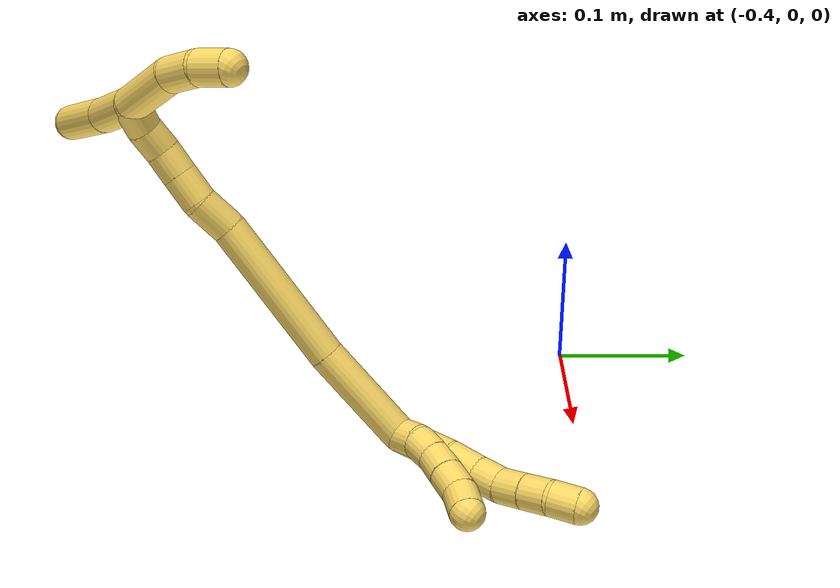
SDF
<sdf version="1.7">
 <world name="default">
  <model name="5">
   <static>0</static>
   <link name="5">
    <collision name="collision-cylinder-e_1_2_8">
     <pose>-0.000195 -0.00746 -0.021471 2.80718 -0.008571 -0.050768</pose>
     <geometry><cylinder><radius>0.0125</radius><length>0.045462</length></cylinder></geometry>
     <surface>
      <friction><ode><mu>1.16</mu><mu2>1.16</mu2><slip1>0</slip1><slip2>0</slip2></ode></friction>
      <contact><ode><kp>1e+06</kp><kd>1</kd><max_vel>0</max_vel><min_depth>0.001</min_depth></ode></contact>
     </surface>
    </collision>
    <visual name="visual-cylinder-e_1_2_8">
     <pose>-0.000195 -0.00746 -0.021471 2.80718 -0.008571 -0.050768</pose>
     <geometry><cylinder><radius>0.0125</radius><length>0.045462</length></cylinder></geometry>
     <material><ambient>1 0.858824 0.4 1</ambient></material>
    </visual>
    <collision name="collision-cylinder-e_2_8_9">
     <pose>-0.000342 -0.017034 -0.05482 2.96553 0.003911 0.044304</pose>
     <geometry><cylinder><radius>0.0125</radius><length>0.02413</length></cylinder></geometry>
     <surface>
      <friction><ode><mu>1.16</mu><mu2>1.16</mu2><slip1>0</slip1><slip2>0</slip2></ode></friction>
      <contact><ode><kp>1e+06</kp><kd>1</kd><max_vel>0</max_vel><min_depth>0.001</min_depth></ode></contact>
     </surface>
    </collision>
    <visual name="visual-cylinder-e_2_8_9">
     <pose>-0.000342 -0.017034 -0.05482 2.96553 0.003911 0.044304</pose>
     <geometry><cylinder><radius>0.0125</radius><length>0.02413</length></cylinder></geometry>
     <material><ambient>1 0.858824 0.4 1</ambient></material>
    </visual>
    <collision name="collision-cylinder-e_3_9_10">
     <pose>-0.000886 -0.022522 -0.076281 2.80299 -0.058087 -0.336693</pose>
     <geometry><cylinder><radius>0.0125</radius><length>0.020352</length></cylinder></geometry>
     <surface>
      <friction><ode><mu>1.16</mu><mu2>1.16</mu2><slip1>0</slip1><slip2>0</slip2></ode></friction>
      <contact><ode><kp>1e+06</kp><kd>1</kd><max_vel>0</max_vel><min_depth>0.001</min_depth></ode></contact>
     </surface>
    </collision>
    <visual name="visual-cylinder-e_3_9_10">
     <pose>-0.000886 -0.022522 -0.076281 2.80299 -0.058087 -0.336693</pose>
     <geometry><cylinder><radius>0.0125</radius><length>0.020352</length></cylinder></geometry>
     <material><ambient>1 0.858824 0.4 1</ambient></material>
    </visual>
    <collision name="collision-cylinder-e_4_10_11">
     <pose>-0.000873 -0.030757 -0.094612 2.63451 0.060216 0.231422</pose>
     <geometry><cylinder><radius>0.0125</radius><length>0.020053</length></cylinder></geometry>
     <surface>
      <friction><ode><mu>1.16</mu><mu2>1.16</mu2><slip1>0</slip1><slip2>0</slip2></ode></friction>
      <contact><ode><kp>1e+06</kp><kd>1</kd><max_vel>0</max_vel><min_depth>0.001</min_depth></ode></contact>
     </surface>
    </collision>
    <visual name="visual-cylinder-e_4_10_11">
     <pose>-0.000873 -0.030757 -0.094612 2.63451 0.060216 0.231422</pose>
     <geometry><cylinder><radius>0.0125</radius><length>0.020053</length></cylinder></geometry>
     <material><ambient>1 0.858824 0.4 1</ambient></material>
    </visual>
    <collision name="collision-cylinder-e_5_11_12">
     <pose>0.000708 -0.040206 -0.112193 2.66237 0.097965 0.396057</pose>
     <geometry><cylinder><radius>0.0125</radius><length>0.020003</length></cylinder></geometry>
     <surface>
      <friction><ode><mu>1.16</mu><mu2>1.16</mu2><slip1>0</slip1><slip2>0</slip2></ode></friction>
      <contact><ode><kp>1e+06</kp><kd>1</kd><max_vel>0</max_vel><min_depth>0.001</min_depth></ode></contact>
     </surface>
    </collision>
    <visual name="visual-cylinder-e_5_11_12">
     <pose>0.000708 -0.040206 -0.112193 2.66237 0.097965 0.396057</pose>
     <geometry><cylinder><radius>0.0125</radius><length>0.020003</length></cylinder></geometry>
     <material><ambient>1 0.858824 0.4 1</ambient></material>
    </visual>
    <collision name="collision-cylinder-e_6_12_6">
     <pose>0.003896 -0.047208 -0.130475 2.89171 0.222753 1.45504</pose>
     <geometry><cylinder><radius>0.0125</radius><length>0.02</length></cylinder></geometry>
     <surface>
      <friction><ode><mu>1.16</mu><mu2>1.16</mu2><slip1>0</slip1><slip2>0</slip2></ode></friction>
      <contact><ode><kp>1e+06</kp><kd>1</kd><max_vel>0</max_vel><min_depth>0.001</min_depth></ode></contact>
     </surface>
    </collision>
    <visual name="visual-cylinder-e_6_12_6">
     <pose>0.003896 -0.047208 -0.130475 2.89171 0.222753 1.45504</pose>
     <geometry><cylinder><radius>0.0125</radius><length>0.02</length></cylinder></geometry>
     <material><ambient>1 0.858824 0.4 1</ambient></material>
    </visual>
    <collision name="collision-cylinder-e_1_2_13">
     <pose>-0.000884 -0.005065 -0.008577 2.60819 -0.088558 -0.321548</pose>
     <geometry><cylinder><radius>0.0125</radius><length>0.02</length></cylinder></geometry>
     <surface>
      <friction><ode><mu>1.16</mu><mu2>1.16</mu2><slip1>0</slip1><slip2>0</slip2></ode></friction>
      <contact><ode><kp>1e+06</kp><kd>1</kd><max_vel>0</max_vel><min_depth>0.001</min_depth></ode></contact>
     </surface>
    </collision>
    <visual name="visual-cylinder-e_1_2_13">
     <pose>-0.000884 -0.005065 -0.008577 2.60819 -0.088558 -0.321548</pose>
     <geometry><cylinder><radius>0.0125</radius><length>0.02</length></cylinder></geometry>
     <material><ambient>1 0.858824 0.4 1</ambient></material>
    </visual>
    <collision name="collision-cylinder-e_2_13_14">
     <pose>-0.0048 -0.013323 -0.026133 2.79988 -0.307977 -1.4652</pose>
     <geometry><cylinder><radius>0.0125</radius><length>0.02</length></cylinder></geometry>
     <surface>
      <friction><ode><mu>1.16</mu><mu2>1.16</mu2><slip1>0</slip1><slip2>0</slip2></ode></friction>
      <contact><ode><kp>1e+06</kp><kd>1</kd><max_vel>0</max_vel><min_depth>0.001</min_depth></ode></contact>
     </surface>
    </collision>
    <visual name="visual-cylinder-e_2_13_14">
     <pose>-0.0048 -0.013323 -0.026133 2.79988 -0.307977 -1.4652</pose>
     <geometry><cylinder><radius>0.0125</radius><length>0.02</length></cylinder></geometry>
     <material><ambient>1 0.858824 0.4 1</ambient></material>
    </visual>
    <collision name="collision-cylinder-e_3_14_15">
     <pose>-0.012517 -0.01968 -0.04336 2.77529 -0.487609 -1.8615</pose>
     <geometry><cylinder><radius>0.0125</radius><length>0.02</length></cylinder></geometry>
     <surface>
      <friction><ode><mu>1.16</mu><mu2>1.16</mu2><slip1>0</slip1><slip2>0</slip2></ode></friction>
      <contact><ode><kp>1e+06</kp><kd>1</kd><max_vel>0</max_vel><min_depth>0.001</min_depth></ode></contact>
     </surface>
    </collision>
    <visual name="visual-cylinder-e_3_14_15">
     <pose>-0.012517 -0.01968 -0.04336 2.77529 -0.487609 -1.8615</pose>
     <geometry><cylinder><radius>0.0125</radius><length>0.02</length></cylinder></geometry>
     <material><ambient>1 0.858824 0.4 1</ambient></material>
    </visual>
    <collision name="collision-cylinder-e_4_15_16">
     <pose>-0.021689 -0.025628 -0.0601 2.82483 -0.465366 -1.95549</pose>
     <geometry><cylinder><radius>0.0125</radius><length>0.02</length></cylinder></geometry>
     <surface>
      <friction><ode><mu>1.16</mu><mu2>1.16</mu2><slip1>0</slip1><slip2>0</slip2></ode></friction>
      <contact><ode><kp>1e+06</kp><kd>1</kd><max_vel>0</max_vel><min_depth>0.001</min_depth></ode></contact>
     </surface>
    </collision>
    <visual name="visual-cylinder-e_4_15_16">
     <pose>-0.021689 -0.025628 -0.0601 2.82483 -0.465366 -1.95549</pose>
     <geometry><cylinder><radius>0.0125</radius><length>0.02</length></cylinder></geometry>
     <material><ambient>1 0.858824 0.4 1</ambient></material>
    </visual>
    <collision name="collision-cylinder-e_5_16_5">
     <pose>-0.03246 -0.03167 -0.075656 2.70939 -0.679448 -2.02994</pose>
     <geometry><cylinder><radius>0.0125</radius><length>0.02</length></cylinder></geometry>
     <surface>
      <friction><ode><mu>1.16</mu><mu2>1.16</mu2><slip1>0</slip1><slip2>0</slip2></ode></friction>
      <contact><ode><kp>1e+06</kp><kd>1</kd><max_vel>0</max_vel><min_depth>0.001</min_depth></ode></contact>
     </surface>
    </collision>
    <visual name="visual-cylinder-e_5_16_5">
     <pose>-0.03246 -0.03167 -0.075656 2.70939 -0.679448 -2.02994</pose>
     <geometry><cylinder><radius>0.0125</radius><length>0.02</length></cylinder></geometry>
     <material><ambient>1 0.858824 0.4 1</ambient></material>
    </visual>
    <collision name="collision-cylinder-e_1_2_17">
     <pose>-0.001308 -0.018365 0.034031 0.494863 -0.033812 -0.008542</pose>
     <geometry><cylinder><radius>0.0125</radius><length>0.077384</length></cylinder></geometry>
     <surface>
      <friction><ode><mu>1.16</mu><mu2>1.16</mu2><slip1>0</slip1><slip2>0</slip2></ode></friction>
      <contact><ode><kp>1e+06</kp><kd>1</kd><max_vel>0</max_vel><min_depth>0.001</min_depth></ode></contact>
     </surface>
    </collision>
    <visual name="visual-cylinder-e_1_2_17">
     <pose>-0.001308 -0.018365 0.034031 0.494863 -0.033812 -0.008542</pose>
     <geometry><cylinder><radius>0.0125</radius><length>0.077384</length></cylinder></geometry>
     <material><ambient>1 0.858824 0.4 1</ambient></material>
    </visual>
    <collision name="collision-cylinder-e_2_17_18">
     <pose>-0.001439 -0.066958 0.115176 0.570451 0.021029 0.006166</pose>
     <geometry><cylinder><radius>0.0125</radius><length>0.111981</length></cylinder></geometry>
     <surface>
      <friction><ode><mu>1.16</mu><mu2>1.16</mu2><slip1>0</slip1><slip2>0</slip2></ode></friction>
      <contact><ode><kp>1e+06</kp><kd>1</kd><max_vel>0</max_vel><min_depth>0.001</min_depth></ode></contact>
     </surface>
    </collision>
    <visual name="visual-cylinder-e_2_17_18">
     <pose>-0.001439 -0.066958 0.115176 0.570451 0.021029 0.006166</pose>
     <geometry><cylinder><radius>0.0125</radius><length>0.111981</length></cylinder></geometry>
     <material><ambient>1 0.858824 0.4 1</ambient></material>
    </visual>
    <collision name="collision-cylinder-e_3_18_19">
     <pose>-0.003089 -0.104797 0.173426 0.599511 -0.206645 -0.064074</pose>
     <geometry><cylinder><radius>0.0125</radius><length>0.027561</length></cylinder></geometry>
     <surface>
      <friction><ode><mu>1.16</mu><mu2>1.16</mu2><slip1>0</slip1><slip2>0</slip2></ode></friction>
      <contact><ode><kp>1e+06</kp><kd>1</kd><max_vel>0</max_vel><min_depth>0.001</min_depth></ode></contact>
     </surface>
    </collision>
    <visual name="visual-cylinder-e_3_18_19">
     <pose>-0.003089 -0.104797 0.173426 0.599511 -0.206645 -0.064074</pose>
     <geometry><cylinder><radius>0.0125</radius><length>0.027561</length></cylinder></geometry>
     <material><ambient>1 0.858824 0.4 1</ambient></material>
    </visual>
    <collision name="collision-cylinder-e_4_19_20">
     <pose>-0.005431 -0.118728 0.194125 0.584 0.042286 0.012712</pose>
     <geometry><cylinder><radius>0.0125</radius><length>0.022947</length></cylinder></geometry>
     <surface>
      <friction><ode><mu>1.16</mu><mu2>1.16</mu2><slip1>0</slip1><slip2>0</slip2></ode></friction>
      <contact><ode><kp>1e+06</kp><kd>1</kd><max_vel>0</max_vel><min_depth>0.001</min_depth></ode></contact>
     </surface>
    </collision>
    <visual name="visual-cylinder-e_4_19_20">
     <pose>-0.005431 -0.118728 0.194125 0.584 0.042286 0.012712</pose>
     <geometry><cylinder><radius>0.0125</radius><length>0.022947</length></cylinder></geometry>
     <material><ambient>1 0.858824 0.4 1</ambient></material>
    </visual>
    <collision name="collision-cylinder-e_5_20_21">
     <pose>-0.004631 -0.130964 0.211746 0.633236 0.03149 0.010318</pose>
     <geometry><cylinder><radius>0.0125</radius><length>0.020002</length></cylinder></geometry>
     <surface>
      <friction><ode><mu>1.16</mu><mu2>1.16</mu2><slip1>0</slip1><slip2>0</slip2></ode></friction>
      <contact><ode><kp>1e+06</kp><kd>1</kd><max_vel>0</max_vel><min_depth>0.001</min_depth></ode></contact>
     </surface>
    </collision>
    <visual name="visual-cylinder-e_5_20_21">
     <pose>-0.004631 -0.130964 0.211746 0.633236 0.03149 0.010318</pose>
     <geometry><cylinder><radius>0.0125</radius><length>0.020002</length></cylinder></geometry>
     <material><ambient>1 0.858824 0.4 1</ambient></material>
    </visual>
    <collision name="collision-cylinder-e_6_21_22">
     <pose>-0.005702 -0.143945 0.22679 0.791138 -0.138517 -0.057918</pose>
     <geometry><cylinder><radius>0.0125</radius><length>0.020066</length></cylinder></geometry>
     <surface>
      <friction><ode><mu>1.16</mu><mu2>1.16</mu2><slip1>0</slip1><slip2>0</slip2></ode></friction>
      <contact><ode><kp>1e+06</kp><kd>1</kd><max_vel>0</max_vel><min_depth>0.001</min_depth></ode></contact>
     </surface>
    </collision>
    <visual name="visual-cylinder-e_6_21_22">
     <pose>-0.005702 -0.143945 0.22679 0.791138 -0.138517 -0.057918</pose>
     <geometry><cylinder><radius>0.0125</radius><length>0.020066</length></cylinder></geometry>
     <material><ambient>1 0.858824 0.4 1</ambient></material>
    </visual>
    <collision name="collision-cylinder-e_7_22_1">
     <pose>-0.008196 -0.159847 0.238391 1.08944 -0.110801 -0.067174</pose>
     <geometry><cylinder><radius>0.0125</radius><length>0.020059</length></cylinder></geometry>
     <surface>
      <friction><ode><mu>1.16</mu><mu2>1.16</mu2><slip1>0</slip1><slip2>0</slip2></ode></friction>
      <contact><ode><kp>1e+06</kp><kd>1</kd><max_vel>0</max_vel><min_depth>0.001</min_depth></ode></contact>
     </surface>
    </collision>
    <visual name="visual-cylinder-e_7_22_1">
     <pose>-0.008196 -0.159847 0.238391 1.08944 -0.110801 -0.067174</pose>
     <geometry><cylinder><radius>0.0125</radius><length>0.020059</length></cylinder></geometry>
     <material><ambient>1 0.858824 0.4 1</ambient></material>
    </visual>
    <collision name="collision-cylinder-e_1_1_23">
     <pose>-0.007943 -0.15279 0.257801 -0.82113 0.06266 -0.027283</pose>
     <geometry><cylinder><radius>0.0125</radius><length>0.043512</length></cylinder></geometry>
     <surface>
      <friction><ode><mu>1.16</mu><mu2>1.16</mu2><slip1>0</slip1><slip2>0</slip2></ode></friction>
      <contact><ode><kp>1e+06</kp><kd>1</kd><max_vel>0</max_vel><min_depth>0.001</min_depth></ode></contact>
     </surface>
    </collision>
    <visual name="visual-cylinder-e_1_1_23">
     <pose>-0.007943 -0.15279 0.257801 -0.82113 0.06266 -0.027283</pose>
     <geometry><cylinder><radius>0.0125</radius><length>0.043512</length></cylinder></geometry>
     <material><ambient>1 0.858824 0.4 1</ambient></material>
    </visual>
    <collision name="collision-cylinder-e_2_23_4">
     <pose>-0.004284 -0.117489 0.292986 -0.760774 0.081406 -0.032566</pose>
     <geometry><cylinder><radius>0.0125</radius><length>0.056488</length></cylinder></geometry>
     <surface>
      <friction><ode><mu>1.16</mu><mu2>1.16</mu2><slip1>0</slip1><slip2>0</slip2></ode></friction>
      <contact><ode><kp>1e+06</kp><kd>1</kd><max_vel>0</max_vel><min_depth>0.001</min_depth></ode></contact>
     </surface>
    </collision>
    <visual name="visual-cylinder-e_2_23_4">
     <pose>-0.004284 -0.117489 0.292986 -0.760774 0.081406 -0.032566</pose>
     <geometry><cylinder><radius>0.0125</radius><length>0.056488</length></cylinder></geometry>
     <material><ambient>1 0.858824 0.4 1</ambient></material>
    </visual>
    <collision name="collision-cylinder-e_1_1_24">
     <pose>-0.004197 -0.187878 0.229067 2.19887 0.212099 0.411788</pose>
     <geometry><cylinder><radius>0.0125</radius><length>0.048532</length></cylinder></geometry>
     <surface>
      <friction><ode><mu>1.16</mu><mu2>1.16</mu2><slip1>0</slip1><slip2>0</slip2></ode></friction>
      <contact><ode><kp>1e+06</kp><kd>1</kd><max_vel>0</max_vel><min_depth>0.001</min_depth></ode></contact>
     </surface>
    </collision>
    <visual name="visual-cylinder-e_1_1_24">
     <pose>-0.004197 -0.187878 0.229067 2.19887 0.212099 0.411788</pose>
     <geometry><cylinder><radius>0.0125</radius><length>0.048532</length></cylinder></geometry>
     <material><ambient>1 0.858824 0.4 1</ambient></material>
    </visual>
    <collision name="collision-cylinder-e_2_24_25">
     <pose>0.003159 -0.215445 0.204706 2.4648 0.166593 0.465849</pose>
     <geometry><cylinder><radius>0.0125</radius><length>0.027112</length></cylinder></geometry>
     <surface>
      <friction><ode><mu>1.16</mu><mu2>1.16</mu2><slip1>0</slip1><slip2>0</slip2></ode></friction>
      <contact><ode><kp>1e+06</kp><kd>1</kd><max_vel>0</max_vel><min_depth>0.001</min_depth></ode></contact>
     </surface>
    </collision>
    <visual name="visual-cylinder-e_2_24_25">
     <pose>0.003159 -0.215445 0.204706 2.4648 0.166593 0.465849</pose>
     <geometry><cylinder><radius>0.0125</radius><length>0.027112</length></cylinder></geometry>
     <material><ambient>1 0.858824 0.4 1</ambient></material>
    </visual>
    <collision name="collision-cylinder-e_3_25_3">
     <pose>0.008337 -0.228758 0.183547 2.71039 0.242979 1.01714</pose>
     <geometry><cylinder><radius>0.0125</radius><length>0.024356</length></cylinder></geometry>
     <surface>
      <friction><ode><mu>1.16</mu><mu2>1.16</mu2><slip1>0</slip1><slip2>0</slip2></ode></friction>
      <contact><ode><kp>1e+06</kp><kd>1</kd><max_vel>0</max_vel><min_depth>0.001</min_depth></ode></contact>
     </surface>
    </collision>
    <visual name="visual-cylinder-e_3_25_3">
     <pose>0.008337 -0.228758 0.183547 2.71039 0.242979 1.01714</pose>
     <geometry><cylinder><radius>0.0125</radius><length>0.024356</length></cylinder></geometry>
     <material><ambient>1 0.858824 0.4 1</ambient></material>
    </visual>
    <collision name="collision-sphere-3">
     <pose>0.011267 -0.233699 0.172808 0 -0 0</pose>
     <geometry><sphere><radius>0.0125</radius></sphere></geometry>
     <surface>
      <friction><ode><mu>1.16</mu><mu2>1.16</mu2><slip1>0</slip1><slip2>0</slip2></ode></friction>
      <contact><ode><kp>1e+06</kp><kd>1</kd><max_vel>0</max_vel><min_depth>0.001</min_depth></ode></contact>
     </surface>
    </collision>
    <visual name="visual-sphere-3">
     <pose>0.011267 -0.233699 0.172808 0 -0 0</pose>
     <geometry><sphere><radius>0.0125</radius></sphere></geometry>
     <material><ambient>1 0.858824 0.4 1</ambient></material>
    </visual>
    <collision name="collision-sphere-25">
     <pose>0.005407 -0.223818 0.194285 0 -0 0</pose>
     <geometry><sphere><radius>0.0125</radius></sphere></geometry>
     <surface>
      <friction><ode><mu>1.16</mu><mu2>1.16</mu2><slip1>0</slip1><slip2>0</slip2></ode></friction>
      <contact><ode><kp>1e+06</kp><kd>1</kd><max_vel>0</max_vel><min_depth>0.001</min_depth></ode></contact>
     </surface>
    </collision>
    <visual name="visual-sphere-25">
     <pose>0.005407 -0.223818 0.194285 0 -0 0</pose>
     <geometry><sphere><radius>0.0125</radius></sphere></geometry>
     <material><ambient>1 0.858824 0.4 1</ambient></material>
    </visual>
    <collision name="collision-sphere-24">
     <pose>0.000912 -0.207073 0.215128 0 -0 0</pose>
     <geometry><sphere><radius>0.0125</radius></sphere></geometry>
     <surface>
      <friction><ode><mu>1.16</mu><mu2>1.16</mu2><slip1>0</slip1><slip2>0</slip2></ode></friction>
      <contact><ode><kp>1e+06</kp><kd>1</kd><max_vel>0</max_vel><min_depth>0.001</min_depth></ode></contact>
     </surface>
    </collision>
    <visual name="visual-sphere-24">
     <pose>0.000912 -0.207073 0.215128 0 -0 0</pose>
     <geometry><sphere><radius>0.0125</radius></sphere></geometry>
     <material><ambient>1 0.858824 0.4 1</ambient></material>
    </visual>
    <collision name="collision-sphere-4">
     <pose>-0.001987 -0.098079 0.313375 0 -0 0</pose>
     <geometry><sphere><radius>0.0125</radius></sphere></geometry>
     <surface>
      <friction><ode><mu>1.16</mu><mu2>1.16</mu2><slip1>0</slip1><slip2>0</slip2></ode></friction>
      <contact><ode><kp>1e+06</kp><kd>1</kd><max_vel>0</max_vel><min_depth>0.001</min_depth></ode></contact>
     </surface>
    </collision>
    <visual name="visual-sphere-4">
     <pose>-0.001987 -0.098079 0.313375 0 -0 0</pose>
     <geometry><sphere><radius>0.0125</radius></sphere></geometry>
     <material><ambient>1 0.858824 0.4 1</ambient></material>
    </visual>
    <collision name="collision-sphere-23">
     <pose>-0.00658 -0.136898 0.272596 0 -0 0</pose>
     <geometry><sphere><radius>0.0125</radius></sphere></geometry>
     <surface>
      <friction><ode><mu>1.16</mu><mu2>1.16</mu2><slip1>0</slip1><slip2>0</slip2></ode></friction>
      <contact><ode><kp>1e+06</kp><kd>1</kd><max_vel>0</max_vel><min_depth>0.001</min_depth></ode></contact>
     </surface>
    </collision>
    <visual name="visual-sphere-23">
     <pose>-0.00658 -0.136898 0.272596 0 -0 0</pose>
     <geometry><sphere><radius>0.0125</radius></sphere></geometry>
     <material><ambient>1 0.858824 0.4 1</ambient></material>
    </visual>
    <collision name="collision-sphere-1">
     <pose>-0.009305 -0.168683 0.243006 0 -0 0</pose>
     <geometry><sphere><radius>0.0125</radius></sphere></geometry>
     <surface>
      <friction><ode><mu>1.16</mu><mu2>1.16</mu2><slip1>0</slip1><slip2>0</slip2></ode></friction>
      <contact><ode><kp>1e+06</kp><kd>1</kd><max_vel>0</max_vel><min_depth>0.001</min_depth></ode></contact>
     </surface>
    </collision>
    <visual name="visual-sphere-1">
     <pose>-0.009305 -0.168683 0.243006 0 -0 0</pose>
     <geometry><sphere><radius>0.0125</radius></sphere></geometry>
     <material><ambient>1 0.858824 0.4 1</ambient></material>
    </visual>
    <collision name="collision-sphere-22">
     <pose>-0.007087 -0.151012 0.233776 0 -0 0</pose>
     <geometry><sphere><radius>0.0125</radius></sphere></geometry>
     <surface>
      <friction><ode><mu>1.16</mu><mu2>1.16</mu2><slip1>0</slip1><slip2>0</slip2></ode></friction>
      <contact><ode><kp>1e+06</kp><kd>1</kd><max_vel>0</max_vel><min_depth>0.001</min_depth></ode></contact>
     </surface>
    </collision>
    <visual name="visual-sphere-22">
     <pose>-0.007087 -0.151012 0.233776 0 -0 0</pose>
     <geometry><sphere><radius>0.0125</radius></sphere></geometry>
     <material><ambient>1 0.858824 0.4 1</ambient></material>
    </visual>
    <collision name="collision-sphere-21">
     <pose>-0.004316 -0.136879 0.219804 0 -0 0</pose>
     <geometry><sphere><radius>0.0125</radius></sphere></geometry>
     <surface>
      <friction><ode><mu>1.16</mu><mu2>1.16</mu2><slip1>0</slip1><slip2>0</slip2></ode></friction>
      <contact><ode><kp>1e+06</kp><kd>1</kd><max_vel>0</max_vel><min_depth>0.001</min_depth></ode></contact>
     </surface>
    </collision>
    <visual name="visual-sphere-21">
     <pose>-0.004316 -0.136879 0.219804 0 -0 0</pose>
     <geometry><sphere><radius>0.0125</radius></sphere></geometry>
     <material><ambient>1 0.858824 0.4 1</ambient></material>
    </visual>
    <collision name="collision-sphere-12">
     <pose>0.001686 -0.044796 -0.121025 0 -0 0</pose>
     <geometry><sphere><radius>0.0125</radius></sphere></geometry>
     <surface>
      <friction><ode><mu>1.16</mu><mu2>1.16</mu2><slip1>0</slip1><slip2>0</slip2></ode></friction>
      <contact><ode><kp>1e+06</kp><kd>1</kd><max_vel>0</max_vel><min_depth>0.001</min_depth></ode></contact>
     </surface>
    </collision>
    <visual name="visual-sphere-12">
     <pose>0.001686 -0.044796 -0.121025 0 -0 0</pose>
     <geometry><sphere><radius>0.0125</radius></sphere></geometry>
     <material><ambient>1 0.858824 0.4 1</ambient></material>
    </visual>
    <collision name="collision-sphere-11">
     <pose>-0.00027 -0.035617 -0.103361 0 -0 0</pose>
     <geometry><sphere><radius>0.0125</radius></sphere></geometry>
     <surface>
      <friction><ode><mu>1.16</mu><mu2>1.16</mu2><slip1>0</slip1><slip2>0</slip2></ode></friction>
      <contact><ode><kp>1e+06</kp><kd>1</kd><max_vel>0</max_vel><min_depth>0.001</min_depth></ode></contact>
     </surface>
    </collision>
    <visual name="visual-sphere-11">
     <pose>-0.00027 -0.035617 -0.103361 0 -0 0</pose>
     <geometry><sphere><radius>0.0125</radius></sphere></geometry>
     <material><ambient>1 0.858824 0.4 1</ambient></material>
    </visual>
    <collision name="collision-sphere-10">
     <pose>-0.001477 -0.025896 -0.085863 0 -0 0</pose>
     <geometry><sphere><radius>0.0125</radius></sphere></geometry>
     <surface>
      <friction><ode><mu>1.16</mu><mu2>1.16</mu2><slip1>0</slip1><slip2>0</slip2></ode></friction>
      <contact><ode><kp>1e+06</kp><kd>1</kd><max_vel>0</max_vel><min_depth>0.001</min_depth></ode></contact>
     </surface>
    </collision>
    <visual name="visual-sphere-10">
     <pose>-0.001477 -0.025896 -0.085863 0 -0 0</pose>
     <geometry><sphere><radius>0.0125</radius></sphere></geometry>
     <material><ambient>1 0.858824 0.4 1</ambient></material>
    </visual>
    <collision name="collision-sphere-9">
     <pose>-0.000295 -0.019147 -0.066699 0 -0 0</pose>
     <geometry><sphere><radius>0.0125</radius></sphere></geometry>
     <surface>
      <friction><ode><mu>1.16</mu><mu2>1.16</mu2><slip1>0</slip1><slip2>0</slip2></ode></friction>
      <contact><ode><kp>1e+06</kp><kd>1</kd><max_vel>0</max_vel><min_depth>0.001</min_depth></ode></contact>
     </surface>
    </collision>
    <visual name="visual-sphere-9">
     <pose>-0.000295 -0.019147 -0.066699 0 -0 0</pose>
     <geometry><sphere><radius>0.0125</radius></sphere></geometry>
     <material><ambient>1 0.858824 0.4 1</ambient></material>
    </visual>
    <collision name="collision-sphere-2">
     <geometry><sphere><radius>0.0125</radius></sphere></geometry>
     <surface>
      <friction><ode><mu>1.16</mu><mu2>1.16</mu2><slip1>0</slip1><slip2>0</slip2></ode></friction>
      <contact><ode><kp>1e+06</kp><kd>1</kd><max_vel>0</max_vel><min_depth>0.001</min_depth></ode></contact>
     </surface>
    </collision>
    <visual name="visual-sphere-2">
     <geometry><sphere><radius>0.0125</radius></sphere></geometry>
     <material><ambient>1 0.858824 0.4 1</ambient></material>
    </visual>
    <collision name="collision-sphere-19">
     <pose>-0.005916 -0.112408 0.184561 0 -0 0</pose>
     <geometry><sphere><radius>0.0125</radius></sphere></geometry>
     <surface>
      <friction><ode><mu>1.16</mu><mu2>1.16</mu2><slip1>0</slip1><slip2>0</slip2></ode></friction>
      <contact><ode><kp>1e+06</kp><kd>1</kd><max_vel>0</max_vel><min_depth>0.001</min_depth></ode></contact>
     </surface>
    </collision>
    <visual name="visual-sphere-19">
     <pose>-0.005916 -0.112408 0.184561 0 -0 0</pose>
     <geometry><sphere><radius>0.0125</radius></sphere></geometry>
     <material><ambient>1 0.858824 0.4 1</ambient></material>
    </visual>
    <collision name="collision-sphere-8">
     <pose>-0.00039 -0.014921 -0.042942 0 -0 0</pose>
     <geometry><sphere><radius>0.0125</radius></sphere></geometry>
     <surface>
      <friction><ode><mu>1.16</mu><mu2>1.16</mu2><slip1>0</slip1><slip2>0</slip2></ode></friction>
      <contact><ode><kp>1e+06</kp><kd>1</kd><max_vel>0</max_vel><min_depth>0.001</min_depth></ode></contact>
     </surface>
    </collision>
    <visual name="visual-sphere-8">
     <pose>-0.00039 -0.014921 -0.042942 0 -0 0</pose>
     <geometry><sphere><radius>0.0125</radius></sphere></geometry>
     <material><ambient>1 0.858824 0.4 1</ambient></material>
    </visual>
    <collision name="collision-sphere-6">
     <pose>0.006105 -0.049619 -0.139925 0 -0 0</pose>
     <geometry><sphere><radius>0.0125</radius></sphere></geometry>
     <surface>
      <friction><ode><mu>1.16</mu><mu2>1.16</mu2><slip1>0</slip1><slip2>0</slip2></ode></friction>
      <contact><ode><kp>1e+06</kp><kd>1</kd><max_vel>0</max_vel><min_depth>0.001</min_depth></ode></contact>
     </surface>
    </collision>
    <visual name="visual-sphere-6">
     <pose>0.006105 -0.049619 -0.139925 0 -0 0</pose>
     <geometry><sphere><radius>0.0125</radius></sphere></geometry>
     <material><ambient>1 0.858824 0.4 1</ambient></material>
    </visual>
    <collision name="collision-sphere-13">
     <pose>-0.001769 -0.01013 -0.017154 0 -0 0</pose>
     <geometry><sphere><radius>0.0125</radius></sphere></geometry>
     <surface>
      <friction><ode><mu>1.16</mu><mu2>1.16</mu2><slip1>0</slip1><slip2>0</slip2></ode></friction>
      <contact><ode><kp>1e+06</kp><kd>1</kd><max_vel>0</max_vel><min_depth>0.001</min_depth></ode></contact>
     </surface>
    </collision>
    <visual name="visual-sphere-13">
     <pose>-0.001769 -0.01013 -0.017154 0 -0 0</pose>
     <geometry><sphere><radius>0.0125</radius></sphere></geometry>
     <material><ambient>1 0.858824 0.4 1</ambient></material>
    </visual>
    <collision name="collision-sphere-14">
     <pose>-0.007831 -0.016516 -0.035111 0 -0 0</pose>
     <geometry><sphere><radius>0.0125</radius></sphere></geometry>
     <surface>
      <friction><ode><mu>1.16</mu><mu2>1.16</mu2><slip1>0</slip1><slip2>0</slip2></ode></friction>
      <contact><ode><kp>1e+06</kp><kd>1</kd><max_vel>0</max_vel><min_depth>0.001</min_depth></ode></contact>
     </surface>
    </collision>
    <visual name="visual-sphere-14">
     <pose>-0.007831 -0.016516 -0.035111 0 -0 0</pose>
     <geometry><sphere><radius>0.0125</radius></sphere></geometry>
     <material><ambient>1 0.858824 0.4 1</ambient></material>
    </visual>
    <collision name="collision-sphere-15">
     <pose>-0.017202 -0.022845 -0.051608 0 -0 0</pose>
     <geometry><sphere><radius>0.0125</radius></sphere></geometry>
     <surface>
      <friction><ode><mu>1.16</mu><mu2>1.16</mu2><slip1>0</slip1><slip2>0</slip2></ode></friction>
      <contact><ode><kp>1e+06</kp><kd>1</kd><max_vel>0</max_vel><min_depth>0.001</min_depth></ode></contact>
     </surface>
    </collision>
    <visual name="visual-sphere-15">
     <pose>-0.017202 -0.022845 -0.051608 0 -0 0</pose>
     <geometry><sphere><radius>0.0125</radius></sphere></geometry>
     <material><ambient>1 0.858824 0.4 1</ambient></material>
    </visual>
    <collision name="collision-sphere-16">
     <pose>-0.026177 -0.028412 -0.068592 0 -0 0</pose>
     <geometry><sphere><radius>0.0125</radius></sphere></geometry>
     <surface>
      <friction><ode><mu>1.16</mu><mu2>1.16</mu2><slip1>0</slip1><slip2>0</slip2></ode></friction>
      <contact><ode><kp>1e+06</kp><kd>1</kd><max_vel>0</max_vel><min_depth>0.001</min_depth></ode></contact>
     </surface>
    </collision>
    <visual name="visual-sphere-16">
     <pose>-0.026177 -0.028412 -0.068592 0 -0 0</pose>
     <geometry><sphere><radius>0.0125</radius></sphere></geometry>
     <material><ambient>1 0.858824 0.4 1</ambient></material>
    </visual>
    <collision name="collision-sphere-5">
     <pose>-0.038744 -0.034929 -0.08272 0 -0 0</pose>
     <geometry><sphere><radius>0.0125</radius></sphere></geometry>
     <surface>
      <friction><ode><mu>1.16</mu><mu2>1.16</mu2><slip1>0</slip1><slip2>0</slip2></ode></friction>
      <contact><ode><kp>1e+06</kp><kd>1</kd><max_vel>0</max_vel><min_depth>0.001</min_depth></ode></contact>
     </surface>
    </collision>
    <visual name="visual-sphere-5">
     <pose>-0.038744 -0.034929 -0.08272 0 -0 0</pose>
     <geometry><sphere><radius>0.0125</radius></sphere></geometry>
     <material><ambient>1 0.858824 0.4 1</ambient></material>
    </visual>
    <collision name="collision-sphere-17">
     <pose>-0.002616 -0.036729 0.068061 0 -0 0</pose>
     <geometry><sphere><radius>0.0125</radius></sphere></geometry>
     <surface>
      <friction><ode><mu>1.16</mu><mu2>1.16</mu2><slip1>0</slip1><slip2>0</slip2></ode></friction>
      <contact><ode><kp>1e+06</kp><kd>1</kd><max_vel>0</max_vel><min_depth>0.001</min_depth></ode></contact>
     </surface>
    </collision>
    <visual name="visual-sphere-17">
     <pose>-0.002616 -0.036729 0.068061 0 -0 0</pose>
     <geometry><sphere><radius>0.0125</radius></sphere></geometry>
     <material><ambient>1 0.858824 0.4 1</ambient></material>
    </visual>
    <collision name="collision-sphere-18">
     <pose>-0.000261 -0.097187 0.162291 0 -0 0</pose>
     <geometry><sphere><radius>0.0125</radius></sphere></geometry>
     <surface>
      <friction><ode><mu>1.16</mu><mu2>1.16</mu2><slip1>0</slip1><slip2>0</slip2></ode></friction>
      <contact><ode><kp>1e+06</kp><kd>1</kd><max_vel>0</max_vel><min_depth>0.001</min_depth></ode></contact>
     </surface>
    </collision>
    <visual name="visual-sphere-18">
     <pose>-0.000261 -0.097187 0.162291 0 -0 0</pose>
     <geometry><sphere><radius>0.0125</radius></sphere></geometry>
     <material><ambient>1 0.858824 0.4 1</ambient></material>
    </visual>
    <collision name="collision-sphere-20">
     <pose>-0.004946 -0.125048 0.203688 0 -0 0</pose>
     <geometry><sphere><radius>0.0125</radius></sphere></geometry>
     <surface>
      <friction><ode><mu>1.16</mu><mu2>1.16</mu2><slip1>0</slip1><slip2>0</slip2></ode></friction>
      <contact><ode><kp>1e+06</kp><kd>1</kd><max_vel>0</max_vel><min_depth>0.001</min_depth></ode></contact>
     </surface>
    </collision>
    <visual name="visual-sphere-20">
     <pose>-0.004946 -0.125048 0.203688 0 -0 0</pose>
     <geometry><sphere><radius>0.0125</radius></sphere></geometry>
     <material><ambient>1 0.858824 0.4 1</ambient></material>
    </visual>
    <inertial>
     <pose>-0.003672 -0.083391 0.096479 0 -0 0</pose>
     <mass>0.75</mass>
     <inertia>
      <ixx>0.000229</ixx>
      <ixy>0</ixy>
      <ixz>0</ixz>
      <iyy>0.000126</iyy>
      <iyz>0</iyz>
      <izz>9.1e-05</izz>
     </inertia>
    </inertial>
   </link>
   <pose>-0.261223 -0.128298 0.016066 -1.23857 -0.271891 2.44923</pose>
  </model>
 </world>
</sdf>
